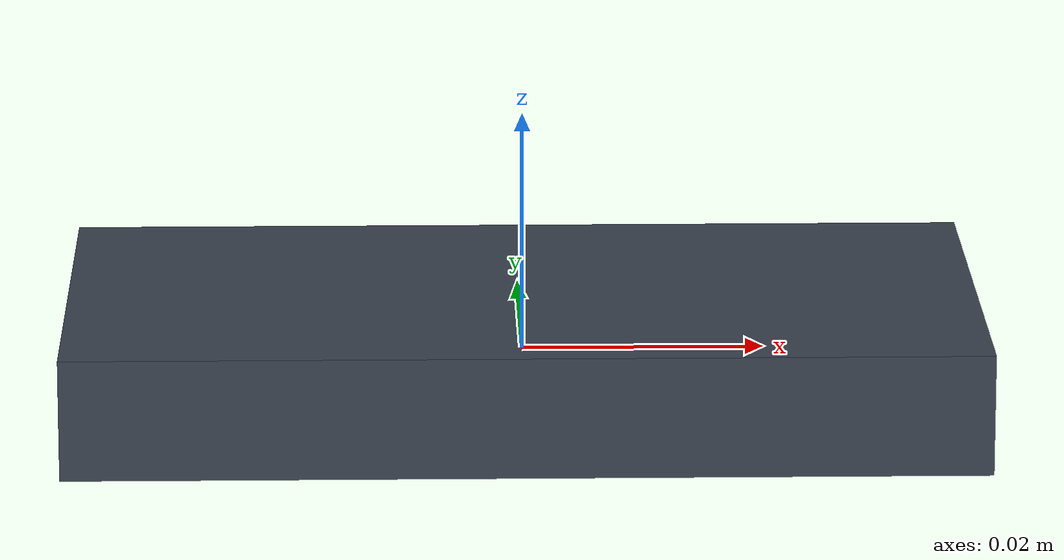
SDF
<?xml version="1.0"?>
<sdf version="1.7">
  <model name="rubiks_cube_support_surface">
    <static>true</static>
    <link name="support_link">
      <collision name="support_collision">
        <geometry><box><size>0.075 0.040 0.010</size></box></geometry>
        <surface>
          <friction><ode><mu>1.2</mu><mu2>1.2</mu2></ode></friction>
          <bounce><restitution_coefficient>0.0</restitution_coefficient></bounce>
          <contact><ode><max_vel>0.001</max_vel><min_depth>0.00001</min_depth></ode></contact>
        </surface>
        <max_contacts>40</max_contacts>
      </collision>
      <visual name="support_visual">
        <geometry><box><size>0.075 0.040 0.010</size></box></geometry>
        <material><ambient>0.25 0.28 0.34 1</ambient><diffuse>0.25 0.28 0.34 1</diffuse></material>
      </visual>
    </link>
  </model>
</sdf>
